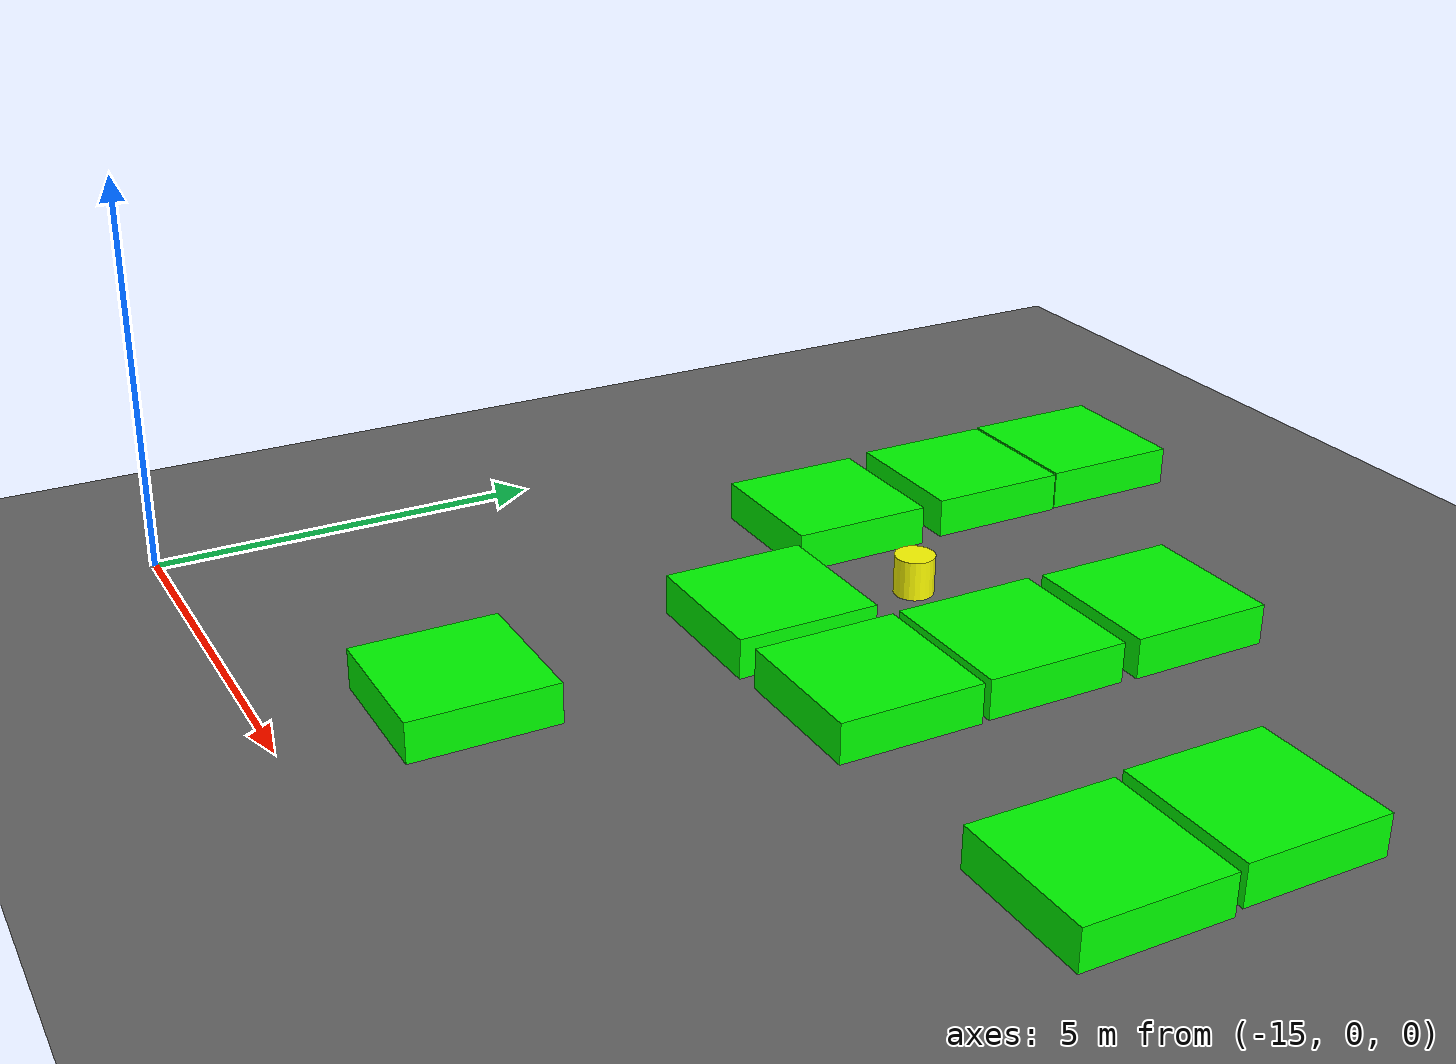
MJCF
<mujoco model="lvl5_deadend_obs10_dlong_depth3_seed2101">
    <compiler angle="degree" coordinate="local" inertiafromgeom="true"/>
    <option integrator="RK4" timestep="0.01"/>

    <asset>
        <texture builtin="gradient" height="100" rgb1="0.6 0.8 1" rgb2="0 0 0" type="skybox" width="100"/>
        <texture name="floor_texture" type="2d" builtin="checker" width="100" height="100" rgb1="0 0 0" rgb2="0.8 0.8 0.8"/>
        <material name="MatPlane" reflectance="0.5" shininess="1" specular="1" texrepeat="10 10" texture="floor_texture"/>
    </asset>

    <!-- Excluding the contact between the agent and the goal, and the agent and the floor -->
    <contact>
        <exclude body1="agent" body2="goal"/>
        <exclude body1 = "agent" body2 = "floor"/>
    </contact>

    <extension>
        <plugin plugin = "mujoco.pid">
            <instance name = "pid1">
                <config key="kp" value="2"/>
                <config key="ki" value="0"/>
                <config key="kd" value="55"/>
            </instance>
        </plugin>
    </extension>

    <worldbody>
        <light cutoff="100" diffuse="1 1 1" dir="-0 0 -1.3" directional="true" exponent="1" pos="0 0 1.3" specular=".1 .1 .1"/>
        <body name="floor" pos="0 0 0">
            <geom name="floor_geom" type="plane" size="20 20 0.1" material="MatPlane"/>
        </body>

                <body name="goal" pos="0.0000 0.0000 0">
            <geom name="goal_geom" type="plane" size="0.5 0.5 1" pos="0 0 0" rgba="1 0 0 1"/>
        </body>

                <body name="agent" pos="-10.0000 8.0000 0.250">
            <joint name="j1" type="slide" axis ="1 0 0 "/>
            <joint name="j2" type="slide" axis ="0 1 0 "/>
            <geom name="agent_geom" type="cylinder" size="0.25 0.25 0.250" rgba="1 1 0 1"/>
        </body>

        <body name="obstacle1" pos="-12.0782 11.9032 0.250">  <geom name="obstacle1_geom" type="box" size="0.9000 0.9000 0.250" rgba="0 1 0 1"/></body>
        <body name="obstacle2" pos="-7.9565 7.9279 0.250">  <geom name="obstacle2_geom" type="box" size="0.9000 0.9000 0.250" rgba="0 1 0 1"/></body>
        <body name="obstacle3" pos="-12.0499 10.0667 0.250">  <geom name="obstacle3_geom" type="box" size="0.9000 0.9000 0.250" rgba="0 1 0 1"/></body>
        <body name="obstacle4" pos="-7.9362 9.9224 0.250">  <geom name="obstacle4_geom" type="box" size="0.9000 0.9000 0.250" rgba="0 1 0 1"/></body>
        <body name="obstacle5" pos="-11.9871 7.9503 0.250">  <geom name="obstacle5_geom" type="box" size="0.9000 0.9000 0.250" rgba="0 1 0 1"/></body>
        <body name="obstacle6" pos="-4.0844 8.0306 0.250">  <geom name="obstacle6_geom" type="box" size="0.9000 0.9000 0.250" rgba="0 1 0 1"/></body>
        <body name="obstacle7" pos="-9.9936 5.9802 0.250">  <geom name="obstacle7_geom" type="box" size="0.9000 0.9000 0.250" rgba="0 1 0 1"/></body>
        <body name="obstacle8" pos="-7.9342 6.0267 0.250">  <geom name="obstacle8_geom" type="box" size="0.9000 0.9000 0.250" rgba="0 1 0 1"/></body>
        <body name="obstacle9" pos="-4.0189 6.0795 0.250">  <geom name="obstacle9_geom" type="box" size="0.9000 0.9000 0.250" rgba="0 1 0 1"/></body>
        <body name="obstacle10" pos="-10.0322 2.0452 0.250">  <geom name="obstacle10_geom" type="box" size="0.9000 0.9000 0.250" rgba="0 1 0 1"/></body>

    </worldbody>

    <sensor>
<!-- SENSORS -->

        <distance name="dist1" geom1="agent_geom" geom2="obstacle1_geom" cutoff="1.5"/>
        <distance name="dist2" geom1="agent_geom" geom2="obstacle2_geom" cutoff="1.5"/>
        <distance name="dist3" geom1="agent_geom" geom2="obstacle3_geom" cutoff="1.5"/>
        <distance name="dist4" geom1="agent_geom" geom2="obstacle4_geom" cutoff="1.5"/>
        <distance name="dist5" geom1="agent_geom" geom2="obstacle5_geom" cutoff="1.5"/>
        <distance name="dist6" geom1="agent_geom" geom2="obstacle6_geom" cutoff="1.5"/>
        <distance name="dist7" geom1="agent_geom" geom2="obstacle7_geom" cutoff="1.5"/>
        <distance name="dist8" geom1="agent_geom" geom2="obstacle8_geom" cutoff="1.5"/>
        <distance name="dist9" geom1="agent_geom" geom2="obstacle9_geom" cutoff="1.5"/>
        <distance name="dist10" geom1="agent_geom" geom2="obstacle10_geom" cutoff="1.5"/>
</sensor>

    <actuator>
        <plugin joint="j1" plugin="mujoco.pid" instance="pid1" />
        <plugin joint="j2" plugin="mujoco.pid" instance="pid1"/>
    </actuator>
</mujoco>
